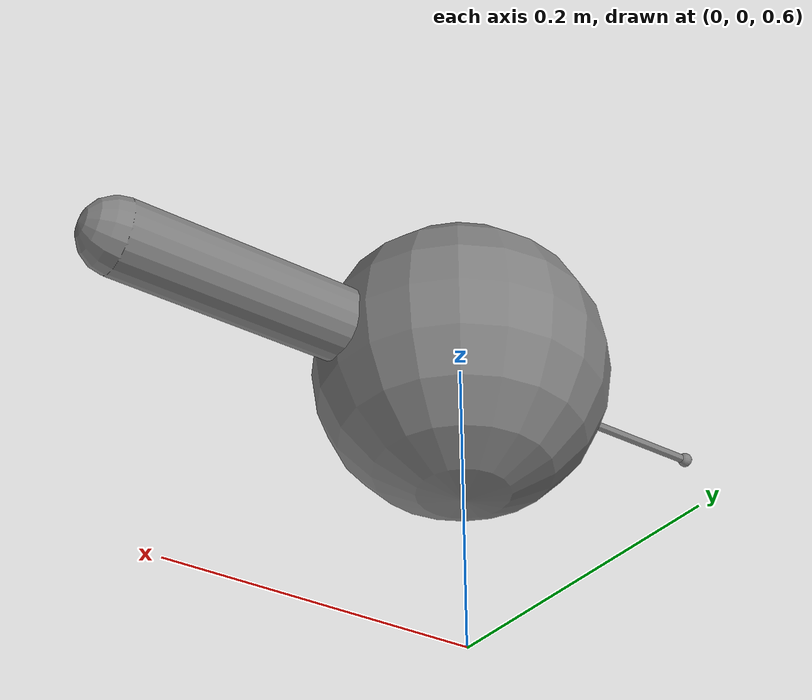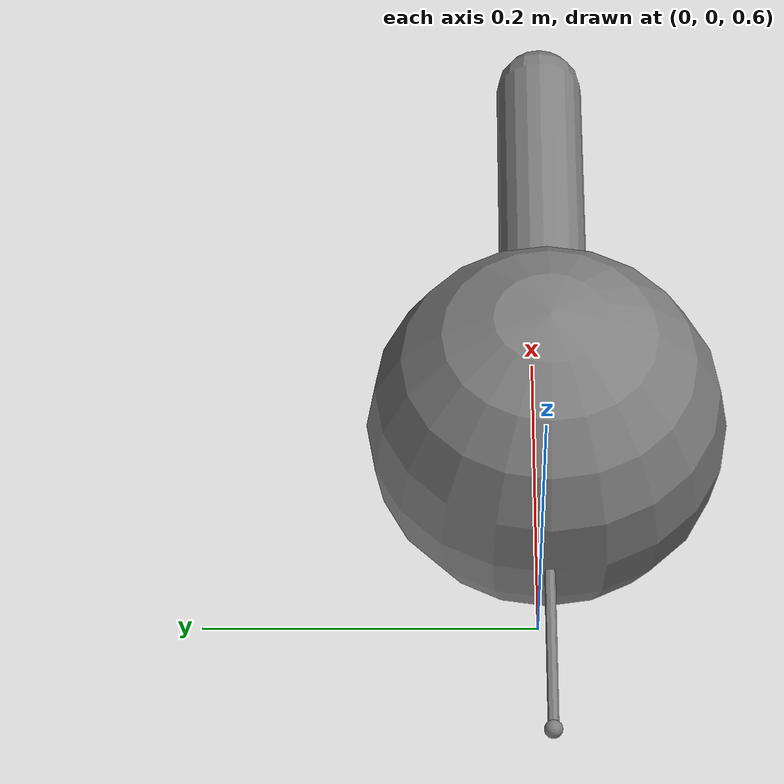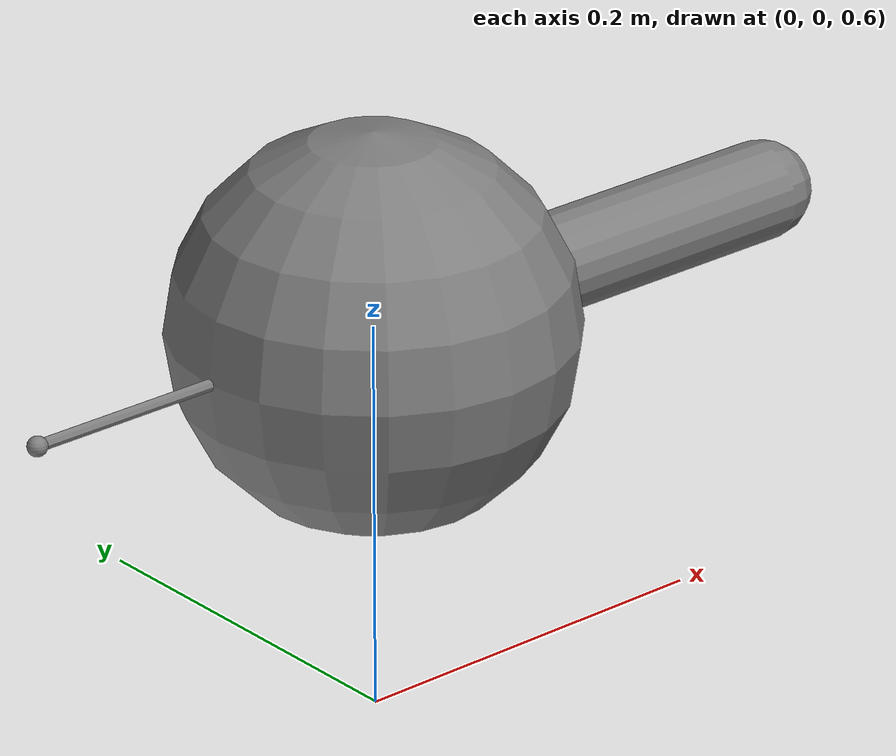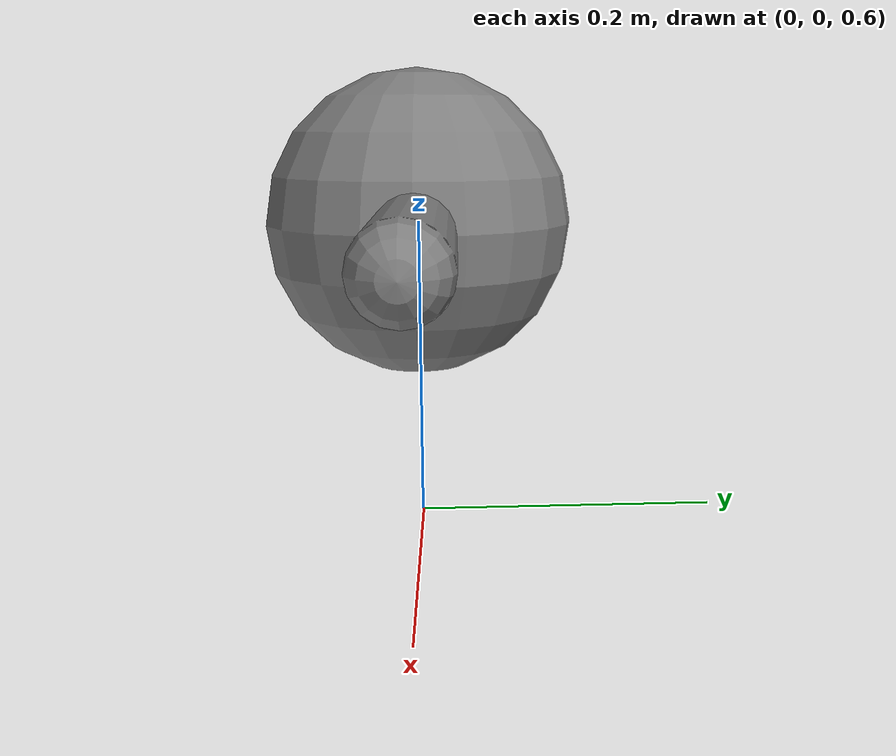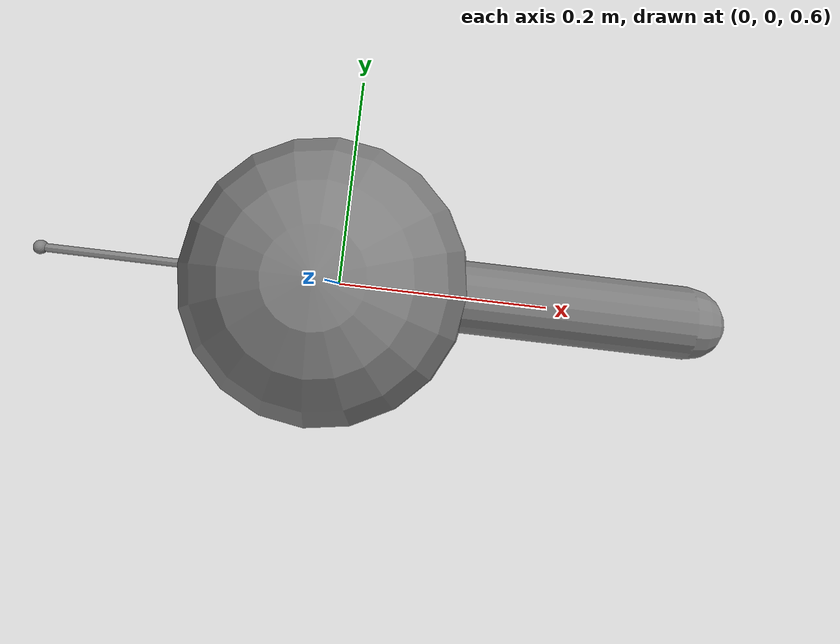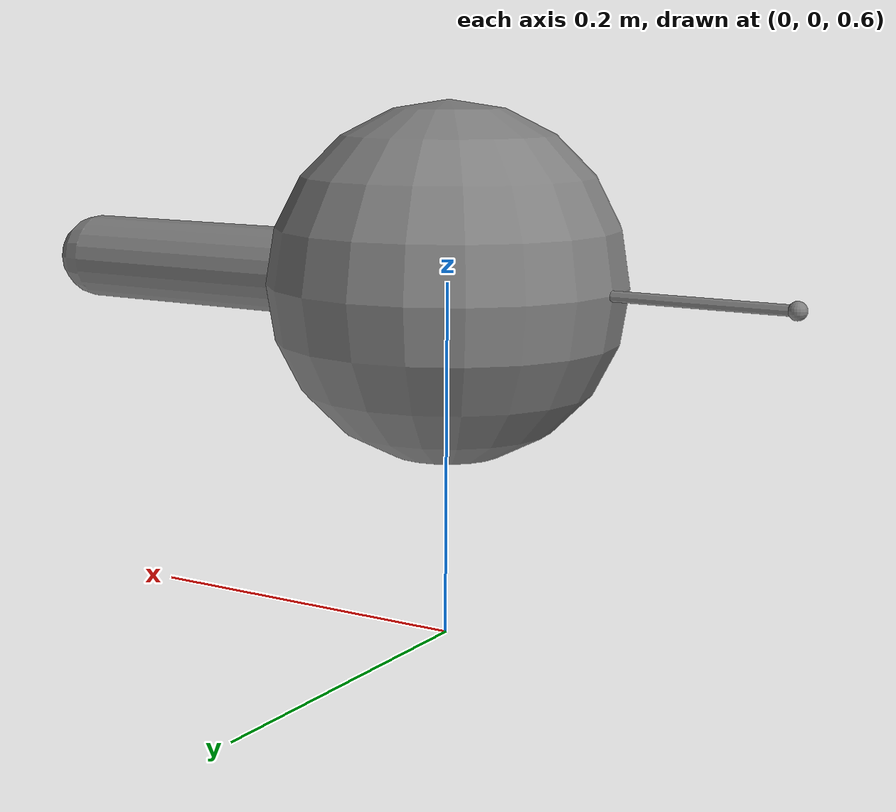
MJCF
<mujoco model="sphere-wrap">
  <option gravity="0 0 0" timestep="0.002"/>
  <compiler angle="radian"/>
  <worldbody>
    <body name="wrap_body" pos="0 0 0.8">
      <geom name="wrap_sphere" type="sphere" size="0.1"
            contype="0" conaffinity="0"/>
    </body>
    <body name="arm" pos="0 0 0.8">
      <joint name="j1" type="hinge" axis="0 1 0"/>
      <geom type="capsule" size="0.025" fromto="0 0 0 0.25 0 0" mass="0.5"/>
      <site name="s_origin" pos="0.2 0 0"/>
    </body>
    <body name="anchor" pos="-0.2 0 0.8">
      <site name="s_insert" pos="0 0 0"/>
    </body>
  </worldbody>
  <tendon>
    <spatial name="t1">
      <site site="s_origin"/>
      <geom geom="wrap_sphere"/>
      <site site="s_insert"/>
    </spatial>
  </tendon>
</mujoco>
